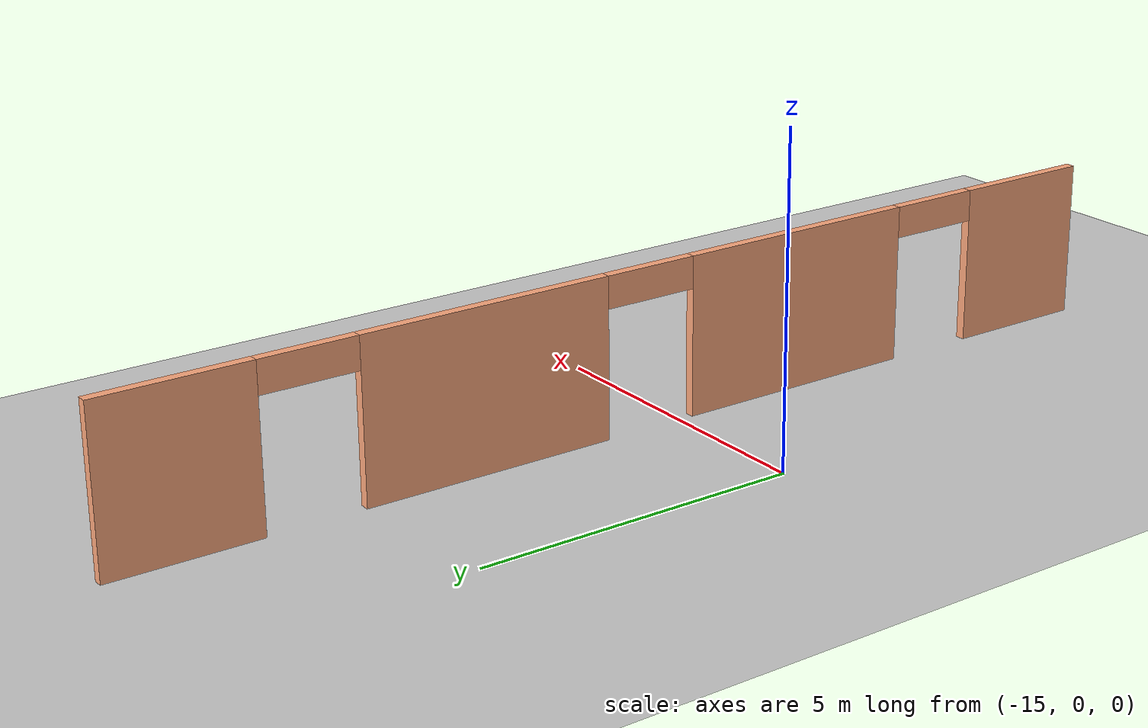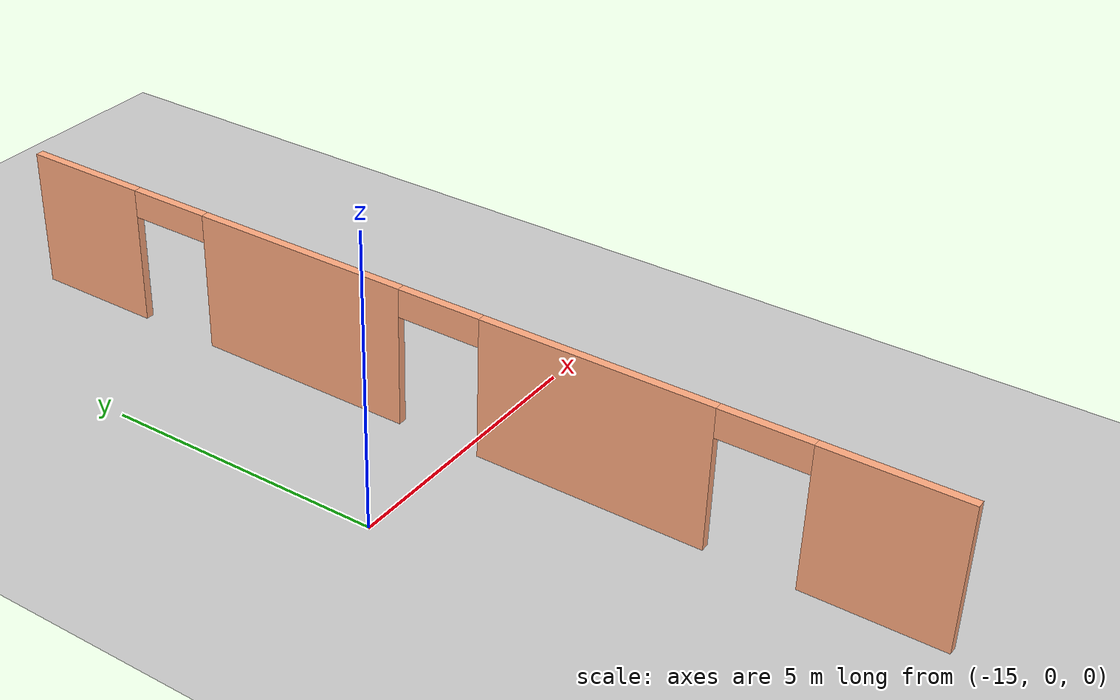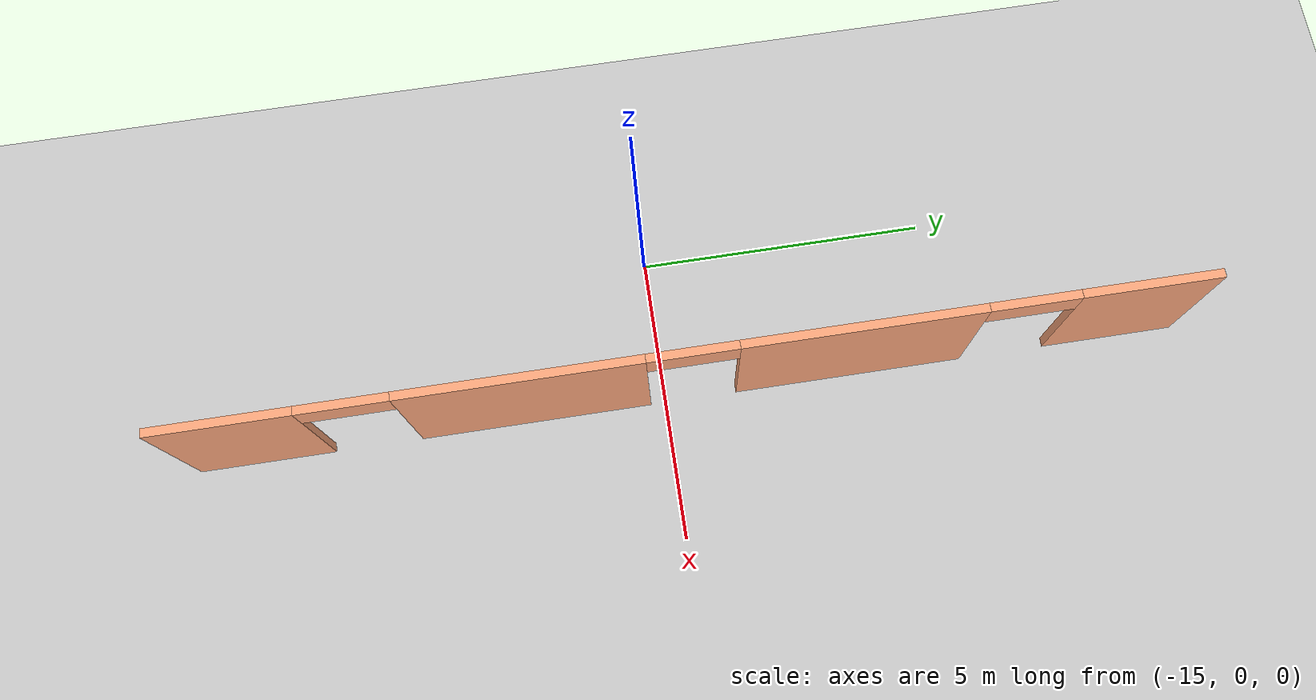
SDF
<sdf version="1.6">
 <world name="default">
  <model name="ground_plane">
   <static>1</static>
   <link name="link">
    <collision name="collision">
     <geometry><plane><normal>0 0 1</normal><size>100 100</size></plane></geometry>
     <surface><friction><ode><mu>100</mu><mu2>50</mu2></ode></friction></surface>
    </collision>
    <visual name="visual">
     <cast_shadows>0</cast_shadows>
     <geometry><plane><normal>0 0 1</normal><size>100 100</size></plane></geometry>
     <material>
      <script><uri>file://media/materials/scripts/gazebo.material</uri><name>Gazebo/Grey</name></script>
     </material>
    </visual>
   </link>
  </model>
  <model name="myWorld">
   <pose>-1.5 0 0 0 -0 0</pose>
   <link name="Wall_26">
    <pose>-11 0.5 0 0 0 -1.5708</pose>
    <visual name="Wall_26_Visual_0">
     <pose>-7.4125 0 1.25 0 -0 0</pose>
     <geometry><box><size>2.325 0.15 2.5</size></box></geometry>
     <material>
      <script><uri>file://media/materials/scripts/gazebo.material</uri><name>Gazebo/Grey</name></script>
      <ambient>1 0.666667 0.498039 1</ambient>
     </material>
     <meta><layer>0</layer></meta>
    </visual>
    <collision name="Wall_26_Collision_0">
     <geometry><box><size>2.325 0.15 2.5</size></box></geometry>
     <pose>-7.4125 0 1.25 0 -0 0</pose>
    </collision>
    <visual name="Wall_26_Visual_1">
     <pose>-2.75 0 1.25 0 -0 0</pose>
     <geometry><box><size>4 0.15 2.5</size></box></geometry>
     <material>
      <script><uri>file://media/materials/scripts/gazebo.material</uri><name>Gazebo/Grey</name></script>
      <ambient>1 0.666667 0.498039 1</ambient>
     </material>
     <meta><layer>0</layer></meta>
    </visual>
    <collision name="Wall_26_Collision_1">
     <geometry><box><size>4 0.15 2.5</size></box></geometry>
     <pose>-2.75 0 1.25 0 -0 0</pose>
    </collision>
    <visual name="Wall_26_Visual_2">
     <pose>2.75 0 1.25 0 -0 0</pose>
     <geometry><box><size>4 0.15 2.5</size></box></geometry>
     <material>
      <script><uri>file://media/materials/scripts/gazebo.material</uri><name>Gazebo/Grey</name></script>
      <ambient>1 0.666667 0.498039 1</ambient>
     </material>
     <meta><layer>0</layer></meta>
    </visual>
    <collision name="Wall_26_Collision_2">
     <geometry><box><size>4 0.15 2.5</size></box></geometry>
     <pose>2.75 0 1.25 0 -0 0</pose>
    </collision>
    <visual name="Wall_26_Visual_3">
     <pose>7.4125 0 1.25 0 -0 0</pose>
     <geometry><box><size>2.325 0.15 2.5</size></box></geometry>
     <material>
      <script><uri>file://media/materials/scripts/gazebo.material</uri><name>Gazebo/Grey</name></script>
      <ambient>1 0.666667 0.498039 1</ambient>
     </material>
     <meta><layer>0</layer></meta>
    </visual>
    <collision name="Wall_26_Collision_3">
     <geometry><box><size>2.325 0.15 2.5</size></box></geometry>
     <pose>7.4125 0 1.25 0 -0 0</pose>
    </collision>
    <visual name="Wall_26_Visual_4">
     <pose>-5.5 0 2.25 0 -0 0</pose>
     <geometry><box><size>1.5 0.15 0.5</size></box></geometry>
     <material>
      <script><uri>file://media/materials/scripts/gazebo.material</uri><name>Gazebo/Grey</name></script>
      <ambient>1 0.666667 0.498039 1</ambient>
     </material>
     <meta><layer>0</layer></meta>
    </visual>
    <collision name="Wall_26_Collision_4">
     <geometry><box><size>1.5 0.15 0.5</size></box></geometry>
     <pose>-5.5 0 2.25 0 -0 0</pose>
    </collision>
    <visual name="Wall_26_Visual_5">
     <pose>0 0 2.25 0 -0 0</pose>
     <geometry><box><size>1.5 0.15 0.5</size></box></geometry>
     <material>
      <script><uri>file://media/materials/scripts/gazebo.material</uri><name>Gazebo/Grey</name></script>
      <ambient>1 0.666667 0.498039 1</ambient>
     </material>
     <meta><layer>0</layer></meta>
    </visual>
    <collision name="Wall_26_Collision_5">
     <geometry><box><size>1.5 0.15 0.5</size></box></geometry>
     <pose>0 0 2.25 0 -0 0</pose>
    </collision>
    <visual name="Wall_26_Visual_6">
     <pose>5.5 0 2.25 0 -0 0</pose>
     <geometry><box><size>1.5 0.15 0.5</size></box></geometry>
     <material>
      <script><uri>file://media/materials/scripts/gazebo.material</uri><name>Gazebo/Grey</name></script>
      <ambient>1 0.666667 0.498039 1</ambient>
     </material>
     <meta><layer>0</layer></meta>
    </visual>
    <collision name="Wall_26_Collision_6">
     <geometry><box><size>1.5 0.15 0.5</size></box></geometry>
     <pose>5.5 0 2.25 0 -0 0</pose>
    </collision>
   </link>
   <static>1</static>
  </model>
 </world>
</sdf>
